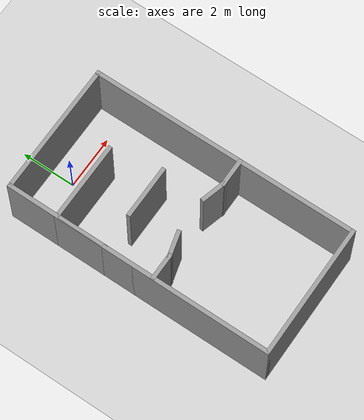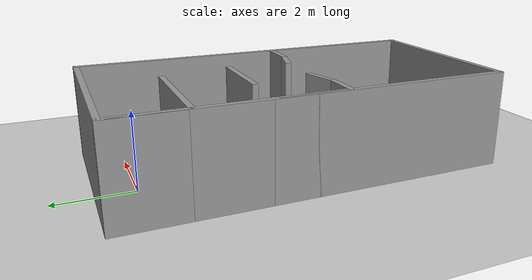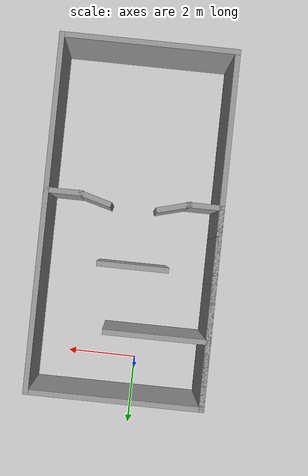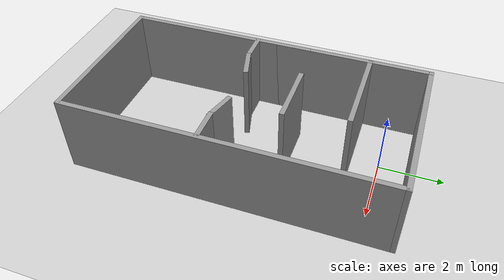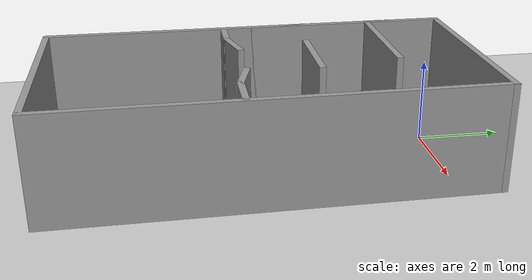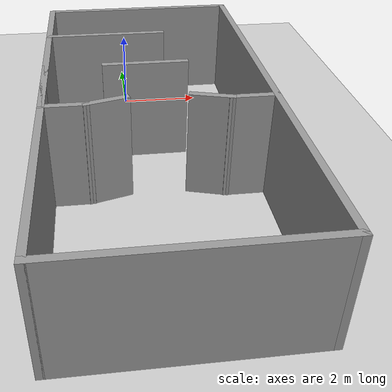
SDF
<sdf version="1.7">
 <world name="default">
  <light name="sun" type="directional">
   <pose>0 0 10 0 -0 0</pose>
   <diffuse>0.8 0.8 0.8 1</diffuse>
   <specular>0.2 0.2 0.2 1</specular>
   <attenuation>
    <range>1000</range>
    <constant>0.9</constant>
    <linear>0.01</linear>
    <quadratic>0.001</quadratic>
   </attenuation>
   <direction>-0.5 0.1 -0.9</direction>
   <spot><inner_angle>0</inner_angle><outer_angle>0</outer_angle><falloff>0</falloff></spot>
  </light>
  <model name="ground_plane">
   <static>1</static>
   <link name="link">
    <collision name="collision">
     <geometry><plane><normal>0 0 1</normal><size>100 100</size></plane></geometry>
     <surface>
      <contact><collide_bitmask>65535</collide_bitmask></contact>
      <friction><ode><mu>100</mu><mu2>50</mu2></ode></friction>
     </surface>
    </collision>
    <visual name="visual">
     <cast_shadows>0</cast_shadows>
     <geometry><plane><normal>0 0 1</normal><size>100 100</size></plane></geometry>
     <material>
      <script><uri>file://media/materials/scripts/gazebo.material</uri><name>Gazebo/Grey</name></script>
     </material>
    </visual>
   </link>
  </model>
  <gravity>0 0 -9.8</gravity>
  <magnetic_field>6e-06 2.3e-05 -4.2e-05</magnetic_field>
  <atmosphere type="adiabatic"/>
  <physics type="ode">
   <max_step_size>0.001</max_step_size>
   <real_time_factor>1</real_time_factor>
   <real_time_update_rate>1000</real_time_update_rate>
  </physics>
  <scene><ambient>0.4 0.4 0.4 1</ambient><background>0.7 0.7 0.7 1</background><shadows>1</shadows></scene>
  <spherical_coordinates>
   <surface_model>EARTH_WGS84</surface_model>
   <latitude_deg>0</latitude_deg>
   <longitude_deg>0</longitude_deg>
   <elevation>0</elevation>
   <heading_deg>0</heading_deg>
  </spherical_coordinates>
  <model name="5x10_d2">
   <pose>0.494283 -4.00803 0 0 0 -3.14089</pose>
   <link name="Wall_0">
    <collision name="Wall_0_Collision">
     <geometry><box><size>10 0.15 2.5</size></box></geometry>
     <pose>0 0 1.25 0 -0 0</pose>
    </collision>
    <visual name="Wall_0_Visual">
     <pose>0 0 1.25 0 -0 0</pose>
     <geometry><box><size>10 0.15 2.5</size></box></geometry>
     <material>
      <script><uri>file://media/materials/scripts/gazebo.material</uri><name>Gazebo/Grey</name></script>
      <ambient>1 1 1 1</ambient>
     </material>
     <meta><layer>0</layer></meta>
    </visual>
    <pose>-2.425 0 0 0 -0 1.5708</pose>
   </link>
   <link name="Wall_1">
    <collision name="Wall_1_Collision">
     <geometry><box><size>5 0.15 2.5</size></box></geometry>
     <pose>0 0 1.25 0 -0 0</pose>
    </collision>
    <visual name="Wall_1_Visual">
     <pose>0 0 1.25 0 -0 0</pose>
     <geometry><box><size>5 0.15 2.5</size></box></geometry>
     <material>
      <script><uri>file://media/materials/scripts/gazebo.material</uri><name>Gazebo/Grey</name></script>
      <ambient>1 1 1 1</ambient>
     </material>
     <meta><layer>0</layer></meta>
    </visual>
    <pose>0 4.925 0 0 -0 0</pose>
   </link>
   <link name="Wall_10">
    <collision name="Wall_10_Collision">
     <geometry><box><size>2 0.15 2.5</size></box></geometry>
     <pose>0 0 1.25 0 -0 0</pose>
    </collision>
    <visual name="Wall_10_Visual">
     <pose>0 0 1.25 0 -0 0</pose>
     <geometry><box><size>2 0.15 2.5</size></box></geometry>
     <material>
      <script><uri>file://media/materials/scripts/gazebo.material</uri><name>Gazebo/Grey</name></script>
      <ambient>1 1 1 1</ambient>
     </material>
     <meta><layer>0</layer></meta>
    </visual>
    <pose>2.425 -4 0 0 -0 1.5708</pose>
   </link>
   <link name="Wall_11">
    <collision name="Wall_11_Collision">
     <geometry><box><size>3 0.15 2.5</size></box></geometry>
     <pose>0 0 1.25 0 -0 0</pose>
    </collision>
    <visual name="Wall_11_Visual">
     <pose>0 0 1.25 0 -0 0</pose>
     <geometry><box><size>3 0.15 2.5</size></box></geometry>
     <material>
      <script><uri>file://media/materials/scripts/gazebo.material</uri><name>Gazebo/Grey</name></script>
      <ambient>1 1 1 1</ambient>
     </material>
     <meta><layer>0</layer></meta>
    </visual>
    <pose>1 -3.075 0 0 -0 3.14159</pose>
   </link>
   <link name="Wall_13">
    <collision name="Wall_13_Collision">
     <geometry><box><size>2 0.15 2.5</size></box></geometry>
     <pose>0 0 1.25 0 -0 0</pose>
    </collision>
    <visual name="Wall_13_Visual">
     <pose>0 0 1.25 0 -0 0</pose>
     <geometry><box><size>2 0.15 2.5</size></box></geometry>
     <material>
      <script><uri>file://media/materials/scripts/gazebo.material</uri><name>Gazebo/Grey</name></script>
      <ambient>1 1 1 1</ambient>
     </material>
     <meta><layer>0</layer></meta>
    </visual>
    <pose>2.425 -2.15 0 0 -0 1.5708</pose>
   </link>
   <link name="Wall_15">
    <collision name="Wall_15_Collision">
     <geometry><box><size>2 0.15 2.5</size></box></geometry>
     <pose>0 0 1.25 0 -0 0</pose>
    </collision>
    <visual name="Wall_15_Visual">
     <pose>0 0 1.25 0 -0 0</pose>
     <geometry><box><size>2 0.15 2.5</size></box></geometry>
     <material>
      <script><uri>file://media/materials/scripts/gazebo.material</uri><name>Gazebo/Grey</name></script>
      <ambient>1 1 1 1</ambient>
     </material>
     <meta><layer>0</layer></meta>
    </visual>
    <pose>0.15 -1.225 0 0 -0 3.14159</pose>
   </link>
   <link name="Wall_17">
    <collision name="Wall_17_Collision">
     <geometry><box><size>2 0.15 2.5</size></box></geometry>
     <pose>0 0 1.25 0 -0 0</pose>
    </collision>
    <visual name="Wall_17_Visual">
     <pose>0 0 1.25 0 -0 0</pose>
     <geometry><box><size>2 0.15 2.5</size></box></geometry>
     <material>
      <script><uri>file://media/materials/scripts/gazebo.material</uri><name>Gazebo/Grey</name></script>
      <ambient>1 1 1 1</ambient>
     </material>
     <meta><layer>0</layer></meta>
    </visual>
    <pose>2.425 -0.3 0 0 -0 1.5708</pose>
   </link>
   <link name="Wall_18">
    <collision name="Wall_18_Collision">
     <geometry><box><size>1.04626 0.15 2.5</size></box></geometry>
     <pose>0 0 1.25 0 -0 0</pose>
    </collision>
    <visual name="Wall_18_Visual">
     <pose>0 0 1.25 0 -0 0</pose>
     <geometry><box><size>1.04626 0.15 2.5</size></box></geometry>
     <material>
      <script><uri>file://media/materials/scripts/gazebo.material</uri><name>Gazebo/Grey</name></script>
      <ambient>1 1 1 1</ambient>
     </material>
     <meta><layer>0</layer></meta>
    </visual>
    <pose>1.97687 0.625 0 0 -0 3.14159</pose>
   </link>
   <link name="Wall_19">
    <collision name="Wall_19_Collision">
     <geometry><box><size>1 0.15 2.5</size></box></geometry>
     <pose>0 0 1.25 0 -0 0</pose>
    </collision>
    <visual name="Wall_19_Visual">
     <pose>0 0 1.25 0 -0 0</pose>
     <geometry><box><size>1 0.15 2.5</size></box></geometry>
     <material>
      <script><uri>file://media/materials/scripts/gazebo.material</uri><name>Gazebo/Grey</name></script>
      <ambient>1 1 1 1</ambient>
     </material>
     <meta><layer>0</layer></meta>
    </visual>
    <pose>1.11822 0.515002 0 0 -0 -2.87979</pose>
   </link>
   <link name="Wall_21">
    <collision name="Wall_21_Collision">
     <geometry><box><size>1.09252 0.15 2.5</size></box></geometry>
     <pose>0 0 1.25 0 -0 0</pose>
    </collision>
    <visual name="Wall_21_Visual">
     <pose>0 0 1.25 0 -0 0</pose>
     <geometry><box><size>1.09252 0.15 2.5</size></box></geometry>
     <material>
      <script><uri>file://media/materials/scripts/gazebo.material</uri><name>Gazebo/Grey</name></script>
      <ambient>1 1 1 1</ambient>
     </material>
     <meta><layer>0</layer></meta>
    </visual>
    <pose>-1.94928 0.641138 0 0 -0 0</pose>
   </link>
   <link name="Wall_22">
    <collision name="Wall_22_Collision">
     <geometry><box><size>0.977679 0.15 2.5</size></box></geometry>
     <pose>0 0 1.25 0 -0 0</pose>
    </collision>
    <visual name="Wall_22_Visual">
     <pose>0 0 1.25 0 -0 0</pose>
     <geometry><box><size>0.977679 0.15 2.5</size></box></geometry>
     <material>
      <script><uri>file://media/materials/scripts/gazebo.material</uri><name>Gazebo/Grey</name></script>
      <ambient>1 1 1 1</ambient>
     </material>
     <meta><layer>0</layer></meta>
    </visual>
    <pose>-1.07906 0.53114 0 0 -0 -0.269032</pose>
   </link>
   <link name="Wall_5">
    <collision name="Wall_5_Collision">
     <geometry><box><size>5 0.15 2.5</size></box></geometry>
     <pose>0 0 1.25 0 -0 0</pose>
    </collision>
    <visual name="Wall_5_Visual">
     <pose>0 0 1.25 0 -0 0</pose>
     <geometry><box><size>5 0.15 2.5</size></box></geometry>
     <material>
      <script><uri>file://media/materials/scripts/gazebo.material</uri><name>Gazebo/Grey</name></script>
      <ambient>1 1 1 1</ambient>
     </material>
     <meta><layer>0</layer></meta>
    </visual>
    <pose>0 -4.925 0 0 -0 0</pose>
   </link>
   <link name="Wall_8">
    <collision name="Wall_8_Collision">
     <geometry><box><size>10 0.15 2.5</size></box></geometry>
     <pose>0 0 1.25 0 -0 0</pose>
    </collision>
    <visual name="Wall_8_Visual">
     <pose>0 0 1.25 0 -0 0</pose>
     <geometry><box><size>10 0.15 2.5</size></box></geometry>
     <material>
      <script><uri>file://media/materials/scripts/gazebo.material</uri><name>Gazebo/Grey</name></script>
      <ambient>1 1 1 1</ambient>
     </material>
     <meta><layer>0</layer></meta>
    </visual>
    <pose>2.425 0 0 0 -0 -1.5708</pose>
   </link>
   <static>1</static>
  </model>
 </world>
</sdf>
